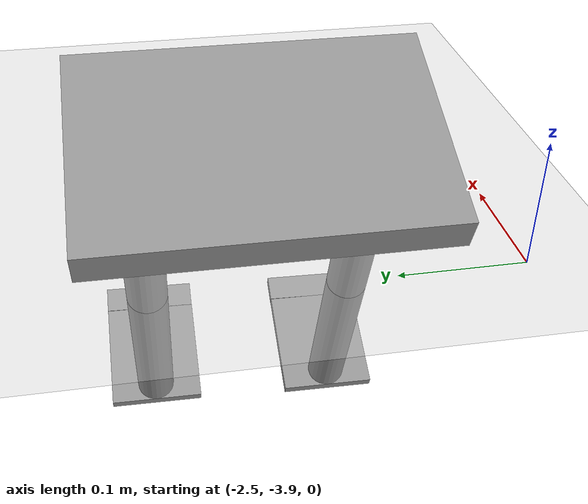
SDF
<sdf version="1.6">
 <world name="default">
  <model name="ground_plane">
   <static>1</static>
   <link name="link">
    <collision name="collision">
     <geometry><plane><normal>0 0 1</normal><size>100 100</size></plane></geometry>
     <surface><friction><ode><mu>100</mu><mu2>50</mu2></ode></friction></surface>
    </collision>
    <visual name="visual">
     <cast_shadows>0</cast_shadows>
     <geometry><plane><normal>0 0 1</normal><size>100 100</size></plane></geometry>
     <material>
      <script><uri>file://media/materials/scripts/gazebo.material</uri><name>Gazebo/Grey</name></script>
     </material>
    </visual>
   </link>
  </model>
  <model name="humanoid_3">
   <link name="link_0">
    <inertial>
     <mass>1</mass>
     <inertia>
      <ixx>0.166667</ixx>
      <ixy>0</ixy>
      <ixz>0</ixz>
      <iyy>0.166667</iyy>
      <iyz>0</iyz>
      <izz>0.166667</izz>
     </inertia>
    </inertial>
    <pose>0.02879 -0.034222 0.3501 0 -0 0</pose>
    <visual name="visual">
     <geometry><box><size>0.2 0.3 0.03</size></box></geometry>
     <material>
      <lighting>1</lighting>
      <script><uri>file://media/materials/scripts/gazebo.material</uri><name>Gazebo/Grey</name></script>
      <shader type="pixel"><normal_map>__default__</normal_map></shader>
      <ambient>0.3 0.3 0.3 1</ambient>
      <diffuse>0.7 0.7 0.7 1</diffuse>
      <specular>0.01 0.01 0.01 1</specular>
      <emissive>0 0 0 1</emissive>
     </material>
    </visual>
    <collision name="collision">
     <geometry><box><size>0.2 0.3 0.03</size></box></geometry>
     <surface>
      <friction>
       <ode><mu>1</mu><mu2>1</mu2><fdir1>0 0 0</fdir1><slip1>0</slip1><slip2>0</slip2></ode>
       <torsional>
        <coefficient>1</coefficient>
        <patch_radius>0</patch_radius>
        <surface_radius>0</surface_radius>
        <use_patch_radius>1</use_patch_radius>
        <ode><slip>0</slip></ode>
       </torsional>
      </friction>
      <bounce><restitution_coefficient>0</restitution_coefficient><threshold>1e+06</threshold></bounce>
      <contact>
       <collide_without_contact>0</collide_without_contact>
       <collide_without_contact_bitmask>1</collide_without_contact_bitmask>
       <collide_bitmask>1</collide_bitmask>
       <ode>
        <soft_cfm>0</soft_cfm>
        <soft_erp>0.2</soft_erp>
        <kp>1e+13</kp>
        <kd>1</kd>
        <max_vel>0.01</max_vel>
        <min_depth>0</min_depth>
       </ode>
       <bullet>
        <split_impulse>1</split_impulse>
        <split_impulse_penetration_threshold>-0.01</split_impulse_penetration_threshold>
        <soft_cfm>0</soft_cfm>
        <soft_erp>0.2</soft_erp>
        <kp>1e+13</kp>
        <kd>1</kd>
       </bullet>
      </contact>
     </surface>
    </collision>
   </link>
   <model name="full-leg">
    <link name="link_0">
     <inertial>
      <mass>0.0847963</mass>
      <inertia>
       <ixx>0.00010908</ixx>
       <ixy>0</ixy>
       <ixz>0</ixz>
       <iyy>7.137e-05</iyy>
       <iyz>0</iyz>
       <izz>0.00017903</izz>
      </inertia>
     </inertial>
     <pose>0.065943 0.108898 0.091666 0 -0 0</pose>
     <visual name="visual">
      <geometry><box><size>0.1 0.12 0.01</size></box></geometry>
      <material>
       <lighting>1</lighting>
       <script><uri>file://media/materials/scripts/gazebo.material</uri><name>Gazebo/Grey</name></script>
       <shader type="pixel"><normal_map>__default__</normal_map></shader>
       <ambient>0.3 0.3 0.3 1</ambient>
       <diffuse>0.7 0.7 0.7 1</diffuse>
       <specular>0.01 0.01 0.01 1</specular>
       <emissive>0 0 0 1</emissive>
      </material>
     </visual>
     <collision name="collision">
      <geometry><box><size>0.1 0.12 0.01</size></box></geometry>
      <surface>
       <friction>
        <ode><mu>1</mu><mu2>1</mu2><fdir1>0 0 0</fdir1><slip1>0</slip1><slip2>0</slip2></ode>
        <torsional>
         <coefficient>1</coefficient>
         <patch_radius>0</patch_radius>
         <surface_radius>0</surface_radius>
         <use_patch_radius>1</use_patch_radius>
         <ode><slip>0</slip></ode>
        </torsional>
       </friction>
       <bounce><restitution_coefficient>0</restitution_coefficient><threshold>1e+06</threshold></bounce>
       <contact>
        <collide_without_contact>0</collide_without_contact>
        <collide_without_contact_bitmask>1</collide_without_contact_bitmask>
        <collide_bitmask>1</collide_bitmask>
        <ode>
         <soft_cfm>0</soft_cfm>
         <soft_erp>0.2</soft_erp>
         <kp>1e+13</kp>
         <kd>1</kd>
         <max_vel>0.01</max_vel>
         <min_depth>0</min_depth>
        </ode>
        <bullet>
         <split_impulse>1</split_impulse>
         <split_impulse_penetration_threshold>-0.01</split_impulse_penetration_threshold>
         <soft_cfm>0</soft_cfm>
         <soft_erp>0.2</soft_erp>
         <kp>1e+13</kp>
         <kd>1</kd>
        </bullet>
       </contact>
      </surface>
     </collision>
    </link>
    <link name="link_0_clone">
     <inertial>
      <mass>0.0847963</mass>
      <inertia>
       <ixx>0.00010908</ixx>
       <ixy>0</ixy>
       <ixz>0</ixz>
       <iyy>7.137e-05</iyy>
       <iyz>0</iyz>
       <izz>0.00017903</izz>
      </inertia>
     </inertial>
     <pose>0.065943 0.183898 0.091666 0 0 -0.01</pose>
     <visual name="visual">
      <geometry><box><size>0.1 0.03 0.01</size></box></geometry>
      <material>
       <lighting>1</lighting>
       <script><uri>file://media/materials/scripts/gazebo.material</uri><name>Gazebo/Grey</name></script>
       <shader type="pixel"><normal_map>__default__</normal_map></shader>
       <ambient>0.3 0.3 0.3 1</ambient>
       <diffuse>0.7 0.7 0.7 1</diffuse>
       <specular>0.01 0.01 0.01 1</specular>
       <emissive>0 0 0 1</emissive>
      </material>
     </visual>
     <collision name="collision">
      <geometry><box><size>0.1 0.03 0.01</size></box></geometry>
      <surface>
       <friction>
        <ode><mu>1</mu><mu2>1</mu2><fdir1>0 0 0</fdir1><slip1>0</slip1><slip2>0</slip2></ode>
        <torsional>
         <coefficient>1</coefficient>
         <patch_radius>0</patch_radius>
         <surface_radius>0</surface_radius>
         <use_patch_radius>1</use_patch_radius>
         <ode><slip>0</slip></ode>
        </torsional>
       </friction>
       <bounce><restitution_coefficient>0</restitution_coefficient><threshold>1e+06</threshold></bounce>
       <contact>
        <collide_without_contact>0</collide_without_contact>
        <collide_without_contact_bitmask>1</collide_without_contact_bitmask>
        <collide_bitmask>1</collide_bitmask>
        <ode>
         <soft_cfm>0</soft_cfm>
         <soft_erp>0.2</soft_erp>
         <kp>1e+13</kp>
         <kd>1</kd>
         <max_vel>0.01</max_vel>
         <min_depth>0</min_depth>
        </ode>
        <bullet>
         <split_impulse>1</split_impulse>
         <split_impulse_penetration_threshold>-0.01</split_impulse_penetration_threshold>
         <soft_cfm>0</soft_cfm>
         <soft_erp>0.2</soft_erp>
         <kp>1e+13</kp>
         <kd>1</kd>
        </bullet>
       </contact>
      </surface>
     </collision>
    </link>
    <link name="link_1">
     <inertial>
      <mass>1</mass>
      <inertia><ixx>0.145833</ixx><ixy>0</ixy><ixz>0</ixz><iyy>0.145833</iyy><iyz>0</iyz><izz>0.125</izz></inertia>
     </inertial>
     <pose>0.065943 0.068898 0.191666 0 -0 0</pose>
     <visual name="visual">
      <geometry><cylinder><radius>0.02</radius><length>0.2</length></cylinder></geometry>
      <material>
       <lighting>1</lighting>
       <script><uri>file://media/materials/scripts/gazebo.material</uri><name>Gazebo/Grey</name></script>
       <shader type="pixel"><normal_map>__default__</normal_map></shader>
       <ambient>0.3 0.3 0.3 1</ambient>
       <diffuse>0.7 0.7 0.7 1</diffuse>
       <specular>0.01 0.01 0.01 1</specular>
       <emissive>0 0 0 1</emissive>
      </material>
     </visual>
     <collision name="collision">
      <geometry><cylinder><radius>0.02</radius><length>0.2</length></cylinder></geometry>
      <surface>
       <friction>
        <ode><mu>1</mu><mu2>1</mu2><fdir1>0 0 0</fdir1><slip1>0</slip1><slip2>0</slip2></ode>
        <torsional>
         <coefficient>1</coefficient>
         <patch_radius>0</patch_radius>
         <surface_radius>0</surface_radius>
         <use_patch_radius>1</use_patch_radius>
         <ode><slip>0</slip></ode>
        </torsional>
       </friction>
       <bounce><restitution_coefficient>0</restitution_coefficient><threshold>1e+06</threshold></bounce>
       <contact>
        <collide_without_contact>0</collide_without_contact>
        <collide_without_contact_bitmask>1</collide_without_contact_bitmask>
        <collide_bitmask>1</collide_bitmask>
        <ode>
         <soft_cfm>0</soft_cfm>
         <soft_erp>0.2</soft_erp>
         <kp>1e+13</kp>
         <kd>1</kd>
         <max_vel>0.01</max_vel>
         <min_depth>0</min_depth>
        </ode>
        <bullet>
         <split_impulse>1</split_impulse>
         <split_impulse_penetration_threshold>-0.01</split_impulse_penetration_threshold>
         <soft_cfm>0</soft_cfm>
         <soft_erp>0.2</soft_erp>
         <kp>1e+13</kp>
         <kd>1</kd>
        </bullet>
       </contact>
      </surface>
     </collision>
    </link>
    <link name="link_1_clone">
     <inertial>
      <mass>1</mass>
      <inertia><ixx>0.145833</ixx><ixy>0</ixy><ixz>0</ixz><iyy>0.145833</iyy><iyz>0</iyz><izz>0.125</izz></inertia>
     </inertial>
     <pose>0.065943 0.068898 0.391666 0 -0 0</pose>
     <visual name="visual">
      <geometry><cylinder><radius>0.02</radius><length>0.2</length></cylinder></geometry>
      <material>
       <lighting>1</lighting>
       <script><uri>file://media/materials/scripts/gazebo.material</uri><name>Gazebo/Grey</name></script>
       <shader type="pixel"><normal_map>__default__</normal_map></shader>
       <ambient>0.3 0.3 0.3 1</ambient>
       <diffuse>0.7 0.7 0.7 1</diffuse>
       <specular>0.01 0.01 0.01 1</specular>
       <emissive>0 0 0 1</emissive>
      </material>
     </visual>
     <collision name="collision">
      <geometry><cylinder><radius>0.02</radius><length>0.2</length></cylinder></geometry>
      <surface>
       <friction>
        <ode><mu>1</mu><mu2>1</mu2><fdir1>0 0 0</fdir1><slip1>0</slip1><slip2>0</slip2></ode>
        <torsional>
         <coefficient>1</coefficient>
         <patch_radius>0</patch_radius>
         <surface_radius>0</surface_radius>
         <use_patch_radius>1</use_patch_radius>
         <ode><slip>0</slip></ode>
        </torsional>
       </friction>
       <bounce><restitution_coefficient>0</restitution_coefficient><threshold>1e+06</threshold></bounce>
       <contact>
        <collide_without_contact>0</collide_without_contact>
        <collide_without_contact_bitmask>1</collide_without_contact_bitmask>
        <collide_bitmask>1</collide_bitmask>
        <ode>
         <soft_cfm>0</soft_cfm>
         <soft_erp>0.2</soft_erp>
         <kp>1e+13</kp>
         <kd>1</kd>
         <max_vel>0.01</max_vel>
         <min_depth>0</min_depth>
        </ode>
        <bullet>
         <split_impulse>1</split_impulse>
         <split_impulse_penetration_threshold>-0.01</split_impulse_penetration_threshold>
         <soft_cfm>0</soft_cfm>
         <soft_erp>0.2</soft_erp>
         <kp>1e+13</kp>
         <kd>1</kd>
        </bullet>
       </contact>
      </surface>
     </collision>
    </link>
    <joint name="link_0_JOINT_0" type="revolute">
     <parent>link_0</parent>
     <child>link_0_clone</child>
     <pose>0 -0.015 0 0 -0 0</pose>
     <axis>
      <xyz>1 0 0</xyz>
      <limit>
       <lower>-1.79769e+308</lower>
       <upper>1.79769e+308</upper>
       <effort>-1</effort>
       <velocity>-1</velocity>
      </limit>
      <dynamics>
       <spring_reference>0</spring_reference>
       <spring_stiffness>0</spring_stiffness>
       <damping>0</damping>
      </dynamics>
      <use_parent_model_frame>0</use_parent_model_frame>
     </axis>
     <physics>
      <ode><limit><cfm>0</cfm><erp>0.2</erp></limit><suspension><cfm>0</cfm><erp>0.2</erp></suspension></ode>
     </physics>
    </joint>
    <joint name="link_0_JOINT_2" type="revolute">
     <parent>link_0</parent>
     <child>link_1</child>
     <pose>0 0 -0.1 0 -0 0</pose>
     <axis>
      <xyz>1 0 0</xyz>
      <limit>
       <lower>-1.79769e+308</lower>
       <upper>1.79769e+308</upper>
       <effort>-1</effort>
       <velocity>-1</velocity>
      </limit>
      <dynamics>
       <spring_reference>0</spring_reference>
       <spring_stiffness>0</spring_stiffness>
       <damping>0</damping>
      </dynamics>
      <use_parent_model_frame>0</use_parent_model_frame>
     </axis>
     <physics>
      <ode><limit><cfm>0</cfm><erp>0.2</erp></limit><suspension><cfm>0</cfm><erp>0.2</erp></suspension></ode>
     </physics>
    </joint>
    <joint name="link_1_JOINT_3" type="revolute">
     <parent>link_1</parent>
     <child>link_1_clone</child>
     <pose>0 0 -0.1 0 -0 0</pose>
     <axis>
      <xyz>1 0 0</xyz>
      <limit>
       <lower>-1.79769e+308</lower>
       <upper>1.79769e+308</upper>
       <effort>-1</effort>
       <velocity>-1</velocity>
      </limit>
      <dynamics>
       <spring_reference>0</spring_reference>
       <spring_stiffness>0</spring_stiffness>
       <damping>0</damping>
      </dynamics>
      <use_parent_model_frame>0</use_parent_model_frame>
     </axis>
     <physics>
      <ode><limit><cfm>0</cfm><erp>0.2</erp></limit><suspension><cfm>0</cfm><erp>0.2</erp></suspension></ode>
     </physics>
    </joint>
    <static>0</static>
    <pose>-0.042531 -0.066167 -0.154901 0 0 -1.57989</pose>
   </model>
   <model name="full-leg_clone">
    <link name="link_0">
     <inertial>
      <mass>0.0847963</mass>
      <inertia>
       <ixx>0.00010908</ixx>
       <ixy>0</ixy>
       <ixz>0</ixz>
       <iyy>7.137e-05</iyy>
       <iyz>0</iyz>
       <izz>0.00017903</izz>
      </inertia>
     </inertial>
     <pose>0.065943 0.108898 0.091666 0 -0 0</pose>
     <visual name="visual">
      <geometry><box><size>0.1 0.12 0.01</size></box></geometry>
      <material>
       <lighting>1</lighting>
       <script><uri>file://media/materials/scripts/gazebo.material</uri><name>Gazebo/Grey</name></script>
       <shader type="pixel"><normal_map>__default__</normal_map></shader>
       <ambient>0.3 0.3 0.3 1</ambient>
       <diffuse>0.7 0.7 0.7 1</diffuse>
       <specular>0.01 0.01 0.01 1</specular>
       <emissive>0 0 0 1</emissive>
      </material>
     </visual>
     <collision name="collision">
      <geometry><box><size>0.1 0.12 0.01</size></box></geometry>
      <surface>
       <friction>
        <ode><mu>1</mu><mu2>1</mu2><fdir1>0 0 0</fdir1><slip1>0</slip1><slip2>0</slip2></ode>
        <torsional>
         <coefficient>1</coefficient>
         <patch_radius>0</patch_radius>
         <surface_radius>0</surface_radius>
         <use_patch_radius>1</use_patch_radius>
         <ode><slip>0</slip></ode>
        </torsional>
       </friction>
       <bounce><restitution_coefficient>0</restitution_coefficient><threshold>1e+06</threshold></bounce>
       <contact>
        <collide_without_contact>0</collide_without_contact>
        <collide_without_contact_bitmask>1</collide_without_contact_bitmask>
        <collide_bitmask>1</collide_bitmask>
        <ode>
         <soft_cfm>0</soft_cfm>
         <soft_erp>0.2</soft_erp>
         <kp>1e+13</kp>
         <kd>1</kd>
         <max_vel>0.01</max_vel>
         <min_depth>0</min_depth>
        </ode>
        <bullet>
         <split_impulse>1</split_impulse>
         <split_impulse_penetration_threshold>-0.01</split_impulse_penetration_threshold>
         <soft_cfm>0</soft_cfm>
         <soft_erp>0.2</soft_erp>
         <kp>1e+13</kp>
         <kd>1</kd>
        </bullet>
       </contact>
      </surface>
     </collision>
    </link>
    <link name="link_0_clone">
     <inertial>
      <mass>0.0847963</mass>
      <inertia>
       <ixx>0.00010908</ixx>
       <ixy>0</ixy>
       <ixz>0</ixz>
       <iyy>7.137e-05</iyy>
       <iyz>0</iyz>
       <izz>0.00017903</izz>
      </inertia>
     </inertial>
     <pose>0.065943 0.183898 0.091666 0 0 -0.01</pose>
     <visual name="visual">
      <geometry><box><size>0.1 0.03 0.01</size></box></geometry>
      <material>
       <lighting>1</lighting>
       <script><uri>file://media/materials/scripts/gazebo.material</uri><name>Gazebo/Grey</name></script>
       <shader type="pixel"><normal_map>__default__</normal_map></shader>
       <ambient>0.3 0.3 0.3 1</ambient>
       <diffuse>0.7 0.7 0.7 1</diffuse>
       <specular>0.01 0.01 0.01 1</specular>
       <emissive>0 0 0 1</emissive>
      </material>
     </visual>
     <collision name="collision">
      <geometry><box><size>0.1 0.03 0.01</size></box></geometry>
      <surface>
       <friction>
        <ode><mu>1</mu><mu2>1</mu2><fdir1>0 0 0</fdir1><slip1>0</slip1><slip2>0</slip2></ode>
        <torsional>
         <coefficient>1</coefficient>
         <patch_radius>0</patch_radius>
         <surface_radius>0</surface_radius>
         <use_patch_radius>1</use_patch_radius>
         <ode><slip>0</slip></ode>
        </torsional>
       </friction>
       <bounce><restitution_coefficient>0</restitution_coefficient><threshold>1e+06</threshold></bounce>
       <contact>
        <collide_without_contact>0</collide_without_contact>
        <collide_without_contact_bitmask>1</collide_without_contact_bitmask>
        <collide_bitmask>1</collide_bitmask>
        <ode>
         <soft_cfm>0</soft_cfm>
         <soft_erp>0.2</soft_erp>
         <kp>1e+13</kp>
         <kd>1</kd>
         <max_vel>0.01</max_vel>
         <min_depth>0</min_depth>
        </ode>
        <bullet>
         <split_impulse>1</split_impulse>
         <split_impulse_penetration_threshold>-0.01</split_impulse_penetration_threshold>
         <soft_cfm>0</soft_cfm>
         <soft_erp>0.2</soft_erp>
         <kp>1e+13</kp>
         <kd>1</kd>
        </bullet>
       </contact>
      </surface>
     </collision>
    </link>
    <link name="link_1">
     <inertial>
      <mass>1</mass>
      <inertia><ixx>0.145833</ixx><ixy>0</ixy><ixz>0</ixz><iyy>0.145833</iyy><iyz>0</iyz><izz>0.125</izz></inertia>
     </inertial>
     <pose>0.065943 0.068898 0.191666 0 -0 0</pose>
     <visual name="visual">
      <geometry><cylinder><radius>0.02</radius><length>0.2</length></cylinder></geometry>
      <material>
       <lighting>1</lighting>
       <script><uri>file://media/materials/scripts/gazebo.material</uri><name>Gazebo/Grey</name></script>
       <shader type="pixel"><normal_map>__default__</normal_map></shader>
       <ambient>0.3 0.3 0.3 1</ambient>
       <diffuse>0.7 0.7 0.7 1</diffuse>
       <specular>0.01 0.01 0.01 1</specular>
       <emissive>0 0 0 1</emissive>
      </material>
     </visual>
     <collision name="collision">
      <geometry><cylinder><radius>0.02</radius><length>0.2</length></cylinder></geometry>
      <surface>
       <friction>
        <ode><mu>1</mu><mu2>1</mu2><fdir1>0 0 0</fdir1><slip1>0</slip1><slip2>0</slip2></ode>
        <torsional>
         <coefficient>1</coefficient>
         <patch_radius>0</patch_radius>
         <surface_radius>0</surface_radius>
         <use_patch_radius>1</use_patch_radius>
         <ode><slip>0</slip></ode>
        </torsional>
       </friction>
       <bounce><restitution_coefficient>0</restitution_coefficient><threshold>1e+06</threshold></bounce>
       <contact>
        <collide_without_contact>0</collide_without_contact>
        <collide_without_contact_bitmask>1</collide_without_contact_bitmask>
        <collide_bitmask>1</collide_bitmask>
        <ode>
         <soft_cfm>0</soft_cfm>
         <soft_erp>0.2</soft_erp>
         <kp>1e+13</kp>
         <kd>1</kd>
         <max_vel>0.01</max_vel>
         <min_depth>0</min_depth>
        </ode>
        <bullet>
         <split_impulse>1</split_impulse>
         <split_impulse_penetration_threshold>-0.01</split_impulse_penetration_threshold>
         <soft_cfm>0</soft_cfm>
         <soft_erp>0.2</soft_erp>
         <kp>1e+13</kp>
         <kd>1</kd>
        </bullet>
       </contact>
      </surface>
     </collision>
    </link>
    <link name="link_1_clone">
     <inertial>
      <mass>1</mass>
      <inertia><ixx>0.145833</ixx><ixy>0</ixy><ixz>0</ixz><iyy>0.145833</iyy><iyz>0</iyz><izz>0.125</izz></inertia>
     </inertial>
     <pose>0.065943 0.068898 0.391666 0 -0 0</pose>
     <visual name="visual">
      <geometry><cylinder><radius>0.02</radius><length>0.2</length></cylinder></geometry>
      <material>
       <lighting>1</lighting>
       <script><uri>file://media/materials/scripts/gazebo.material</uri><name>Gazebo/Grey</name></script>
       <shader type="pixel"><normal_map>__default__</normal_map></shader>
       <ambient>0.3 0.3 0.3 1</ambient>
       <diffuse>0.7 0.7 0.7 1</diffuse>
       <specular>0.01 0.01 0.01 1</specular>
       <emissive>0 0 0 1</emissive>
      </material>
     </visual>
     <collision name="collision">
      <geometry><cylinder><radius>0.02</radius><length>0.2</length></cylinder></geometry>
      <surface>
       <friction>
        <ode><mu>1</mu><mu2>1</mu2><fdir1>0 0 0</fdir1><slip1>0</slip1><slip2>0</slip2></ode>
        <torsional>
         <coefficient>1</coefficient>
         <patch_radius>0</patch_radius>
         <surface_radius>0</surface_radius>
         <use_patch_radius>1</use_patch_radius>
         <ode><slip>0</slip></ode>
        </torsional>
       </friction>
       <bounce><restitution_coefficient>0</restitution_coefficient><threshold>1e+06</threshold></bounce>
       <contact>
        <collide_without_contact>0</collide_without_contact>
        <collide_without_contact_bitmask>1</collide_without_contact_bitmask>
        <collide_bitmask>1</collide_bitmask>
        <ode>
         <soft_cfm>0</soft_cfm>
         <soft_erp>0.2</soft_erp>
         <kp>1e+13</kp>
         <kd>1</kd>
         <max_vel>0.01</max_vel>
         <min_depth>0</min_depth>
        </ode>
        <bullet>
         <split_impulse>1</split_impulse>
         <split_impulse_penetration_threshold>-0.01</split_impulse_penetration_threshold>
         <soft_cfm>0</soft_cfm>
         <soft_erp>0.2</soft_erp>
         <kp>1e+13</kp>
         <kd>1</kd>
        </bullet>
       </contact>
      </surface>
     </collision>
    </link>
    <joint name="link_0_JOINT_0" type="revolute">
     <parent>link_0</parent>
     <child>link_0_clone</child>
     <pose>0 -0.015 0 0 -0 0</pose>
     <axis>
      <xyz>1 0 0</xyz>
      <limit>
       <lower>-1.79769e+308</lower>
       <upper>1.79769e+308</upper>
       <effort>-1</effort>
       <velocity>-1</velocity>
      </limit>
      <dynamics>
       <spring_reference>0</spring_reference>
       <spring_stiffness>0</spring_stiffness>
       <damping>0</damping>
      </dynamics>
      <use_parent_model_frame>0</use_parent_model_frame>
     </axis>
     <physics>
      <ode><limit><cfm>0</cfm><erp>0.2</erp></limit><suspension><cfm>0</cfm><erp>0.2</erp></suspension></ode>
     </physics>
    </joint>
    <joint name="link_0_JOINT_2" type="revolute">
     <parent>link_0</parent>
     <child>link_1</child>
     <pose>0 0 -0.1 0 -0 0</pose>
     <axis>
      <xyz>1 0 0</xyz>
      <limit>
       <lower>-1.79769e+308</lower>
       <upper>1.79769e+308</upper>
       <effort>-1</effort>
       <velocity>-1</velocity>
      </limit>
      <dynamics>
       <spring_reference>0</spring_reference>
       <spring_stiffness>0</spring_stiffness>
       <damping>0</damping>
      </dynamics>
      <use_parent_model_frame>0</use_parent_model_frame>
     </axis>
     <physics>
      <ode><limit><cfm>0</cfm><erp>0.2</erp></limit><suspension><cfm>0</cfm><erp>0.2</erp></suspension></ode>
     </physics>
    </joint>
    <joint name="link_1_JOINT_3" type="revolute">
     <parent>link_1</parent>
     <child>link_1_clone</child>
     <pose>0 0 -0.1 0 -0 0</pose>
     <axis>
      <xyz>1 0 0</xyz>
      <limit>
       <lower>-1.79769e+308</lower>
       <upper>1.79769e+308</upper>
       <effort>-1</effort>
       <velocity>-1</velocity>
      </limit>
      <dynamics>
       <spring_reference>0</spring_reference>
       <spring_stiffness>0</spring_stiffness>
       <damping>0</damping>
      </dynamics>
      <use_parent_model_frame>0</use_parent_model_frame>
     </axis>
     <physics>
      <ode><limit><cfm>0</cfm><erp>0.2</erp></limit><suspension><cfm>0</cfm><erp>0.2</erp></suspension></ode>
     </physics>
    </joint>
    <static>0</static>
    <pose>-0.036586 0.130944 -0.15615 0 0 -1.57989</pose>
   </model>
   <joint name="link_1_clone_JOINT_0" type="revolute">
    <parent>full-leg::link_1_clone</parent>
    <child>link_0</child>
    <pose>0 -0.1 0 0 -0 0</pose>
    <axis>
     <xyz>0 1 0</xyz>
     <limit>
      <lower>-1.79769e+308</lower>
      <upper>1.79769e+308</upper>
      <effort>-1</effort>
      <velocity>-1</velocity>
     </limit>
     <dynamics>
      <spring_reference>0</spring_reference>
      <spring_stiffness>0</spring_stiffness>
      <damping>0</damping>
      <friction>0</friction>
     </dynamics>
     <use_parent_model_frame>0</use_parent_model_frame>
    </axis>
    <physics>
     <ode><limit><cfm>0</cfm><erp>0.2</erp></limit><suspension><cfm>0</cfm><erp>0.2</erp></suspension></ode>
    </physics>
   </joint>
   <joint name="link_1_clone_JOINT_1" type="revolute">
    <parent>full-leg_clone::link_1_clone</parent>
    <child>link_0</child>
    <pose>0 0.1 0 0 -0 0</pose>
    <axis>
     <xyz>0 1 0</xyz>
     <limit>
      <lower>-1.79769e+308</lower>
      <upper>1.79769e+308</upper>
      <effort>-1</effort>
      <velocity>-1</velocity>
     </limit>
     <dynamics>
      <spring_reference>0</spring_reference>
      <spring_stiffness>0</spring_stiffness>
      <damping>0</damping>
     </dynamics>
     <use_parent_model_frame>0</use_parent_model_frame>
    </axis>
    <physics>
     <ode><limit><cfm>0</cfm><erp>0.2</erp></limit><suspension><cfm>0</cfm><erp>0.2</erp></suspension></ode>
    </physics>
   </joint>
   <static>0</static>
   <pose>-2.27946 -3.68375 -0.284369 -0.002948 -0.380254 -0.011802</pose>
  </model>
 </world>
</sdf>
